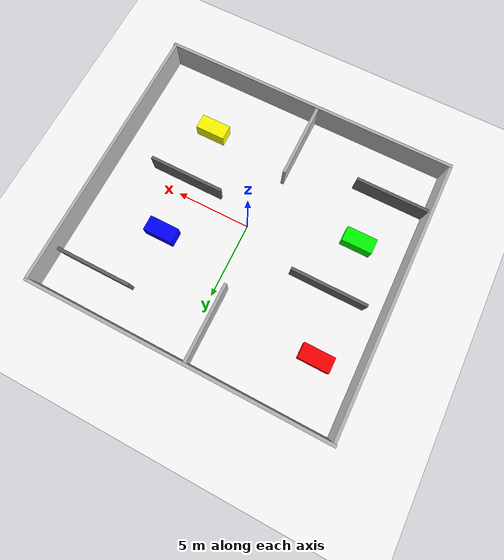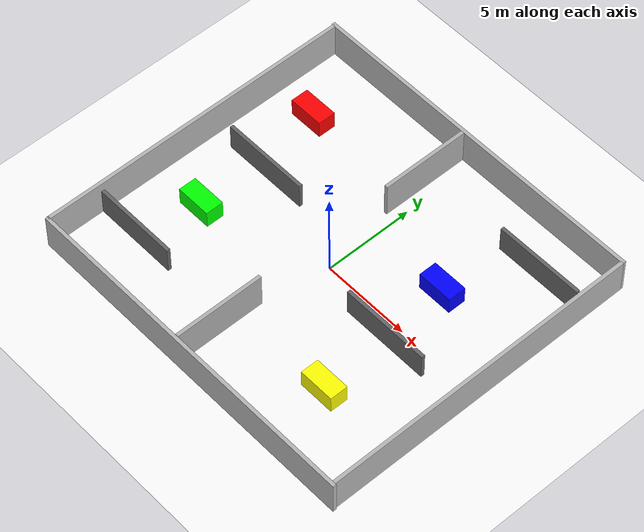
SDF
<sdf version='1.9'>
  <world name='warehouse_world'>
    <plugin name='gz::sim::systems::Physics' filename='gz-sim-physics-system'/>
    <plugin name='gz::sim::systems::UserCommands' filename='gz-sim-user-commands-system'/>
    <plugin name='gz::sim::systems::SceneBroadcaster' filename='gz-sim-scene-broadcaster-system'/>
    <plugin name='gz::sim::systems::Sensors' filename='gz-sim-sensors-system'>
      <render_engine>ogre</render_engine>
    </plugin>
    <gravity>0 0 -9.8</gravity>
    <magnetic_field>6e-06 2.3e-05 -4.2e-05</magnetic_field>
    <atmosphere type='adiabatic'/>
    <physics type='ode'>
      <max_step_size>0.001</max_step_size>
      <real_time_factor>1</real_time_factor>
      <real_time_update_rate>1000</real_time_update_rate>
    </physics>
    <scene>
      <ambient>0.4 0.4 0.4 1</ambient>
      <background>0.7 0.7 0.7 1</background>
      <shadows>true</shadows>
    </scene>
    <model name='white_floor'>
      <static>true</static>
      <pose>2.23267 0 -0.025861 0 -0 0</pose>
      <link name='floor_link'>
        <collision name='collision'>
          <geometry>
            <plane>
              <normal>0 0 1</normal>
              <size>40 40</size>
            </plane>
          </geometry>
          <surface>
            <friction>
              <ode/>
            </friction>
            <bounce/>
            <contact/>
          </surface>
        </collision>
        <visual name='visual'>
          <geometry>
            <plane>
              <normal>0 0 1</normal>
              <size>40 40</size>
            </plane>
          </geometry>
          <material>
            <ambient>1 1 1 1</ambient>
            <diffuse>1 1 1 1</diffuse>
            <specular>0.1 0.1 0.1 1</specular>
          </material>
        </visual>
        <pose>0 0 0 0 -0 0</pose>
        <inertial>
          <pose>0 0 0 0 -0 0</pose>
          <mass>1</mass>
          <inertia>
            <ixx>1</ixx>
            <ixy>0</ixy>
            <ixz>0</ixz>
            <iyy>1</iyy>
            <iyz>0</iyz>
            <izz>1</izz>
          </inertia>
        </inertial>
        <enable_wind>false</enable_wind>
      </link>
      <self_collide>false</self_collide>
    </model>
    <model name='wall_north'>
      <static>true</static>
      <pose>0 9.26567 1 0 -0 0</pose>
      <link name='link'>
        <collision name='collision'>
          <geometry>
            <box>
              <size>20 0.2 2</size>
            </box>
          </geometry>
          <surface>
            <friction>
              <ode/>
            </friction>
            <bounce/>
            <contact/>
          </surface>
        </collision>
        <visual name='visual'>
          <geometry>
            <box>
              <size>20 0.2 2</size>
            </box>
          </geometry>
        </visual>
        <pose>0 0 0 0 -0 0</pose>
        <inertial>
          <pose>0 0 0 0 -0 0</pose>
          <mass>1</mass>
          <inertia>
            <ixx>1</ixx>
            <ixy>0</ixy>
            <ixz>0</ixz>
            <iyy>1</iyy>
            <iyz>0</iyz>
            <izz>1</izz>
          </inertia>
        </inertial>
        <enable_wind>false</enable_wind>
      </link>
      <self_collide>false</self_collide>
    </model>
    <model name='wall_south'>
      <static>true</static>
      <pose>0.074514 -8.79988 1 0 -0 0</pose>
      <link name='link'>
        <collision name='collision'>
          <geometry>
            <box>
              <size>20 0.2 2</size>
            </box>
          </geometry>
          <surface>
            <friction>
              <ode/>
            </friction>
            <bounce/>
            <contact/>
          </surface>
        </collision>
        <visual name='visual'>
          <geometry>
            <box>
              <size>20 0.2 2</size>
            </box>
          </geometry>
        </visual>
        <pose>0 0 0 0 -0 0</pose>
        <inertial>
          <pose>0 0 0 0 -0 0</pose>
          <mass>1</mass>
          <inertia>
            <ixx>1</ixx>
            <ixy>0</ixy>
            <ixz>0</ixz>
            <iyy>1</iyy>
            <iyz>0</iyz>
            <izz>1</izz>
          </inertia>
        </inertial>
        <enable_wind>false</enable_wind>
      </link>
      <self_collide>false</self_collide>
    </model>
    <model name='wall_east'>
      <static>true</static>
      <pose>9.91326 0.210873 1 0 -0 0</pose>
      <link name='link'>
        <collision name='collision'>
          <geometry>
            <box>
              <size>0.2 18 2</size>
            </box>
          </geometry>
          <surface>
            <friction>
              <ode/>
            </friction>
            <bounce/>
            <contact/>
          </surface>
        </collision>
        <visual name='visual'>
          <geometry>
            <box>
              <size>0.2 18 2</size>
            </box>
          </geometry>
        </visual>
        <pose>0 0 0 0 -0 0</pose>
        <inertial>
          <pose>0 0 0 0 -0 0</pose>
          <mass>1</mass>
          <inertia>
            <ixx>1</ixx>
            <ixy>0</ixy>
            <ixz>0</ixz>
            <iyy>1</iyy>
            <iyz>0</iyz>
            <izz>1</izz>
          </inertia>
        </inertial>
        <enable_wind>false</enable_wind>
      </link>
      <self_collide>false</self_collide>
    </model>
    <model name='wall_west'>
      <static>true</static>
      <pose>-9.85496 0.22671 1 0 -0 0</pose>
      <link name='link'>
        <collision name='collision'>
          <geometry>
            <box>
              <size>0.2 18 2</size>
            </box>
          </geometry>
          <surface>
            <friction>
              <ode/>
            </friction>
            <bounce/>
            <contact/>
          </surface>
        </collision>
        <visual name='visual'>
          <geometry>
            <box>
              <size>0.2 18 2</size>
            </box>
          </geometry>
        </visual>
        <pose>0 0 0 0 -0 0</pose>
        <inertial>
          <pose>0 0 0 0 -0 0</pose>
          <mass>1</mass>
          <inertia>
            <ixx>1</ixx>
            <ixy>0</ixy>
            <ixz>0</ixz>
            <iyy>1</iyy>
            <iyz>0</iyz>
            <izz>1</izz>
          </inertia>
        </inertial>
        <enable_wind>false</enable_wind>
      </link>
      <self_collide>false</self_collide>
    </model>
    <model name='mid_vertical_upper'>
      <static>true</static>
      <pose>-0.669572 6.67896 1 0 -0 0</pose>
      <link name='link'>
        <collision name='collision'>
          <geometry>
            <box>
              <size>0.2 5 2</size>
            </box>
          </geometry>
          <surface>
            <friction>
              <ode/>
            </friction>
            <bounce/>
            <contact/>
          </surface>
        </collision>
        <visual name='visual'>
          <geometry>
            <box>
              <size>0.2 5 2</size>
            </box>
          </geometry>
          <material>
            <ambient>0.7 0.7 0.7 1</ambient>
            <diffuse>0.7 0.7 0.7 1</diffuse>
          </material>
        </visual>
        <pose>0 0 0 0 -0 0</pose>
        <inertial>
          <pose>0 0 0 0 -0 0</pose>
          <mass>1</mass>
          <inertia>
            <ixx>1</ixx>
            <ixy>0</ixy>
            <ixz>0</ixz>
            <iyy>1</iyy>
            <iyz>0</iyz>
            <izz>1</izz>
          </inertia>
        </inertial>
        <enable_wind>false</enable_wind>
      </link>
      <self_collide>false</self_collide>
    </model>
    <model name='mid_vertical_lower'>
      <static>true</static>
      <pose>-0.683152 -6.1837 1 0 -0 0</pose>
      <link name='link'>
        <collision name='collision'>
          <geometry>
            <box>
              <size>0.2 5 2</size>
            </box>
          </geometry>
          <surface>
            <friction>
              <ode/>
            </friction>
            <bounce/>
            <contact/>
          </surface>
        </collision>
        <visual name='visual'>
          <geometry>
            <box>
              <size>0.2 5 2</size>
            </box>
          </geometry>
          <material>
            <ambient>0.7 0.7 0.7 1</ambient>
            <diffuse>0.7 0.7 0.7 1</diffuse>
          </material>
        </visual>
        <pose>0 0 0 0 -0 0</pose>
        <inertial>
          <pose>0 0 0 0 -0 0</pose>
          <mass>1</mass>
          <inertia>
            <ixx>1</ixx>
            <ixy>0</ixy>
            <ixz>0</ixz>
            <iyy>1</iyy>
            <iyz>0</iyz>
            <izz>1</izz>
          </inertia>
        </inertial>
        <enable_wind>false</enable_wind>
      </link>
      <self_collide>false</self_collide>
    </model>
    <model name='blocker_tl'>
      <static>true</static>
      <pose>-6.18823 1.50362 0.75 0 -0 0</pose>
      <link name='link'>
        <collision name='collision'>
          <geometry>
            <box>
              <size>5 0.2 1.5</size>
            </box>
          </geometry>
          <surface>
            <friction>
              <ode/>
            </friction>
            <bounce/>
            <contact/>
          </surface>
        </collision>
        <visual name='visual'>
          <geometry>
            <box>
              <size>5 0.2 1.5</size>
            </box>
          </geometry>
          <material>
            <ambient>0.4 0.4 0.4 1</ambient>
            <diffuse>0.4 0.4 0.4 1</diffuse>
          </material>
        </visual>
        <pose>0 0 0 0 -0 0</pose>
        <inertial>
          <pose>0 0 0 0 -0 0</pose>
          <mass>1</mass>
          <inertia>
            <ixx>1</ixx>
            <ixy>0</ixy>
            <ixz>0</ixz>
            <iyy>1</iyy>
            <iyz>0</iyz>
            <izz>1</izz>
          </inertia>
        </inertial>
        <enable_wind>false</enable_wind>
      </link>
      <self_collide>false</self_collide>
    </model>
    <model name='blocker_tr'>
      <static>true</static>
      <pose>7 6.80447 0.75 0 -0 0</pose>
      <link name='link'>
        <collision name='collision'>
          <geometry>
            <box>
              <size>5 0.2 1.5</size>
            </box>
          </geometry>
          <surface>
            <friction>
              <ode/>
            </friction>
            <bounce/>
            <contact/>
          </surface>
        </collision>
        <visual name='visual'>
          <geometry>
            <box>
              <size>5 0.2 1.5</size>
            </box>
          </geometry>
          <material>
            <ambient>0.4 0.4 0.4 1</ambient>
            <diffuse>0.4 0.4 0.4 1</diffuse>
          </material>
        </visual>
        <pose>0 0 0 0 -0 0</pose>
        <inertial>
          <pose>0 0 0 0 -0 0</pose>
          <mass>1</mass>
          <inertia>
            <ixx>1</ixx>
            <ixy>0</ixy>
            <ixz>0</ixz>
            <iyy>1</iyy>
            <iyz>0</iyz>
            <izz>1</izz>
          </inertia>
        </inertial>
        <enable_wind>false</enable_wind>
      </link>
      <self_collide>false</self_collide>
    </model>
    <model name='blocker_bl'>
      <static>true</static>
      <pose>-7.45402 -5.60294 0.75 0 -0 0</pose>
      <link name='link'>
        <collision name='collision'>
          <geometry>
            <box>
              <size>5 0.2 1.5</size>
            </box>
          </geometry>
          <surface>
            <friction>
              <ode/>
            </friction>
            <bounce/>
            <contact/>
          </surface>
        </collision>
        <visual name='visual'>
          <geometry>
            <box>
              <size>5 0.2 1.5</size>
            </box>
          </geometry>
          <material>
            <ambient>0.4 0.4 0.4 1</ambient>
            <diffuse>0.4 0.4 0.4 1</diffuse>
          </material>
        </visual>
        <pose>0 0 0 0 -0 0</pose>
        <inertial>
          <pose>0 0 0 0 -0 0</pose>
          <mass>1</mass>
          <inertia>
            <ixx>1</ixx>
            <ixy>0</ixy>
            <ixz>0</ixz>
            <iyy>1</iyy>
            <iyz>0</iyz>
            <izz>1</izz>
          </inertia>
        </inertial>
        <enable_wind>false</enable_wind>
      </link>
      <self_collide>false</self_collide>
    </model>
    <model name='blocker_br'>
      <static>true</static>
      <pose>4.89641 -0.978738 0.75 0 -0 0</pose>
      <link name='link'>
        <collision name='collision'>
          <geometry>
            <box>
              <size>5 0.2 1.5</size>
            </box>
          </geometry>
          <surface>
            <friction>
              <ode/>
            </friction>
            <bounce/>
            <contact/>
          </surface>
        </collision>
        <visual name='visual'>
          <geometry>
            <box>
              <size>5 0.2 1.5</size>
            </box>
          </geometry>
          <material>
            <ambient>0.4 0.4 0.4 1</ambient>
            <diffuse>0.4 0.4 0.4 1</diffuse>
          </material>
        </visual>
        <pose>0 0 0 0 -0 0</pose>
        <inertial>
          <pose>0 0 0 0 -0 0</pose>
          <mass>1</mass>
          <inertia>
            <ixx>1</ixx>
            <ixy>0</ixy>
            <ixz>0</ixz>
            <iyy>1</iyy>
            <iyz>0</iyz>
            <izz>1</izz>
          </inertia>
        </inertial>
        <enable_wind>false</enable_wind>
      </link>
      <self_collide>false</self_collide>
    </model>
    <model name='shelf_red'>
      <static>true</static>
      <pose>-7.28287 5.50232 0.5 0 -0 0</pose>
      <link name='link'>
        <collision name='collision'>
          <geometry>
            <box>
              <size>2 1 1</size>
            </box>
          </geometry>
          <surface>
            <friction>
              <ode/>
            </friction>
            <bounce/>
            <contact/>
          </surface>
        </collision>
        <visual name='visual'>
          <geometry>
            <box>
              <size>2 1 1</size>
            </box>
          </geometry>
          <material>
            <ambient>1 0 0 1</ambient>
            <diffuse>1 0 0 1</diffuse>
          </material>
        </visual>
        <pose>0 0 0 0 -0 0</pose>
        <inertial>
          <pose>0 0 0 0 -0 0</pose>
          <mass>1</mass>
          <inertia>
            <ixx>1</ixx>
            <ixy>0</ixy>
            <ixz>0</ixz>
            <iyy>1</iyy>
            <iyz>0</iyz>
            <izz>1</izz>
          </inertia>
        </inertial>
        <enable_wind>false</enable_wind>
      </link>
      <self_collide>false</self_collide>
    </model>
    <model name='shelf_blue'>
      <static>true</static>
      <pose>4.62536 2.85591 0.5 0 -0 0</pose>
      <link name='link'>
        <collision name='collision'>
          <geometry>
            <box>
              <size>2 1 1</size>
            </box>
          </geometry>
          <surface>
            <friction>
              <ode/>
            </friction>
            <bounce/>
            <contact/>
          </surface>
        </collision>
        <visual name='visual'>
          <geometry>
            <box>
              <size>2 1 1</size>
            </box>
          </geometry>
          <material>
            <ambient>0 0 1 1</ambient>
            <diffuse>0 0 1 1</diffuse>
          </material>
        </visual>
        <pose>0 0 0 0 -0 0</pose>
        <inertial>
          <pose>0 0 0 0 -0 0</pose>
          <mass>1</mass>
          <inertia>
            <ixx>1</ixx>
            <ixy>0</ixy>
            <ixz>0</ixz>
            <iyy>1</iyy>
            <iyz>0</iyz>
            <izz>1</izz>
          </inertia>
        </inertial>
        <enable_wind>false</enable_wind>
      </link>
      <self_collide>false</self_collide>
    </model>
    <model name='shelf_green'>
      <static>true</static>
      <pose>-6.72019 -2.13969 0.5 0 -0 0</pose>
      <link name='link'>
        <collision name='collision'>
          <geometry>
            <box>
              <size>2 1 1</size>
            </box>
          </geometry>
          <surface>
            <friction>
              <ode/>
            </friction>
            <bounce/>
            <contact/>
          </surface>
        </collision>
        <visual name='visual'>
          <geometry>
            <box>
              <size>2 1 1</size>
            </box>
          </geometry>
          <material>
            <ambient>0 1 0 1</ambient>
            <diffuse>0 1 0 1</diffuse>
          </material>
        </visual>
        <pose>0 0 0 0 -0 0</pose>
        <inertial>
          <pose>0 0 0 0 -0 0</pose>
          <mass>1</mass>
          <inertia>
            <ixx>1</ixx>
            <ixy>0</ixy>
            <ixz>0</ixz>
            <iyy>1</iyy>
            <iyz>0</iyz>
            <izz>1</izz>
          </inertia>
        </inertial>
        <enable_wind>false</enable_wind>
      </link>
      <self_collide>false</self_collide>
    </model>
    <model name='shelf_yellow'>
      <static>true</static>
      <pose>5.06356 -4.90123 0.5 0 -0 0</pose>
      <link name='link'>
        <collision name='collision'>
          <geometry>
            <box>
              <size>2 1 1</size>
            </box>
          </geometry>
          <surface>
            <friction>
              <ode/>
            </friction>
            <bounce/>
            <contact/>
          </surface>
        </collision>
        <visual name='visual'>
          <geometry>
            <box>
              <size>2 1 1</size>
            </box>
          </geometry>
          <material>
            <ambient>1 1 0 1</ambient>
            <diffuse>1 1 0 1</diffuse>
          </material>
        </visual>
        <pose>0 0 0 0 -0 0</pose>
        <inertial>
          <pose>0 0 0 0 -0 0</pose>
          <mass>1</mass>
          <inertia>
            <ixx>1</ixx>
            <ixy>0</ixy>
            <ixz>0</ixz>
            <iyy>1</iyy>
            <iyz>0</iyz>
            <izz>1</izz>
          </inertia>
        </inertial>
        <enable_wind>false</enable_wind>
      </link>
      <self_collide>false</self_collide>
    </model>
    <light name='sun' type='directional'>
      <pose>0 0 10 0 -0 0</pose>
      <cast_shadows>true</cast_shadows>
      <intensity>1</intensity>
      <direction>-0.5 0.1 -0.9</direction>
      <diffuse>0.8 0.8 0.8 1</diffuse>
      <specular>0.2 0.2 0.2 1</specular>
      <attenuation>
        <range>1000</range>
        <linear>0.01</linear>
        <constant>0.90000000000000002</constant>
        <quadratic>0.001</quadratic>
      </attenuation>
      <spot>
        <inner_angle>0</inner_angle>
        <outer_angle>0</outer_angle>
        <falloff>0</falloff>
      </spot>
    </light>
  </world>
</sdf>
